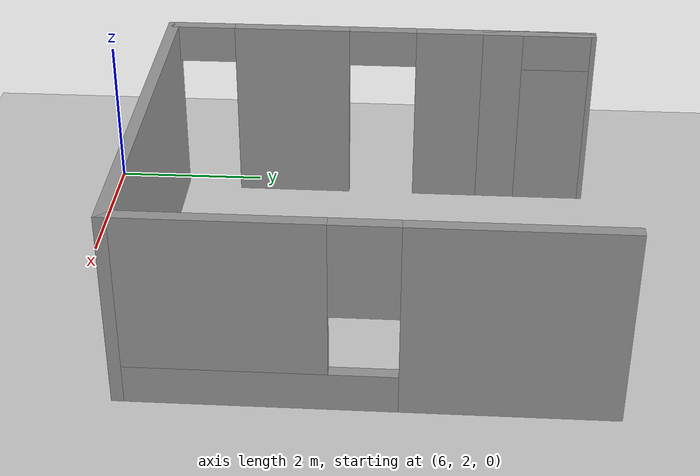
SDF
<sdf version="1.6">
 <world name="default">
  <model name="ground_plane">
   <static>1</static>
   <link name="link">
    <collision name="collision">
     <geometry><plane><normal>0 0 1</normal><size>100 100</size></plane></geometry>
     <surface><friction><ode><mu>100</mu><mu2>50</mu2></ode></friction></surface>
    </collision>
    <visual name="visual">
     <cast_shadows>0</cast_shadows>
     <geometry><plane><normal>0 0 1</normal><size>100 100</size></plane></geometry>
     <material>
      <script><uri>file://media/materials/scripts/gazebo.material</uri><name>Gazebo/Grey</name></script>
     </material>
    </visual>
   </link>
  </model>
  <model name="factory_wall">
   <link name="Wall_30">
    <pose>12.6626 7.37746 0 0 0 -1.5708</pose>
    <visual name="Wall_30_Visual_0">
     <pose>-1.65365 0 1.25 0 -0 0</pose>
     <geometry><box><size>2.5427 0.15 2.5</size></box></geometry>
     <material>
      <script><uri>file://media/materials/scripts/gazebo.material</uri><name>Gazebo/Grey</name></script>
      <ambient>1 1 1 1</ambient>
      <shader type="pixel"/>
     </material>
     <meta><layer>0</layer></meta>
    </visual>
    <visual name="Wall_30_Visual_1">
     <pose>1.27135 0 0.25 0 -0 0</pose>
     <geometry><box><size>3.3073 0.15 0.5</size></box></geometry>
     <material>
      <script><uri>file://media/materials/scripts/gazebo.material</uri><name>Gazebo/Grey</name></script>
      <ambient>1 1 1 1</ambient>
      <shader type="pixel"/>
     </material>
     <meta><layer>0</layer></meta>
    </visual>
    <visual name="Wall_30_Visual_2">
     <pose>1.67135 0 1.5 0 -0 0</pose>
     <geometry><box><size>2.5073 0.15 2</size></box></geometry>
     <material>
      <script><uri>file://media/materials/scripts/gazebo.material</uri><name>Gazebo/Grey</name></script>
      <ambient>1 1 1 1</ambient>
      <shader type="pixel"/>
     </material>
     <meta><layer>0</layer></meta>
    </visual>
    <visual name="Wall_30_Visual_3">
     <pose>0.017697 0 1.9 0 -0 0</pose>
     <geometry><box><size>0.8 0.15 1.2</size></box></geometry>
     <material>
      <script><uri>file://media/materials/scripts/gazebo.material</uri><name>Gazebo/Grey</name></script>
      <ambient>1 1 1 1</ambient>
      <shader type="pixel"/>
     </material>
     <meta><layer>0</layer></meta>
    </visual>
    <collision name="Wall_30_Collision_0">
     <pose>-1.65365 0 1.25 0 -0 0</pose>
     <geometry><box><size>2.5427 0.15 2.5</size></box></geometry>
     <surface>
      <friction>
       <ode><mu>1</mu><mu2>1</mu2><fdir1>0 0 0</fdir1><slip1>0</slip1><slip2>0</slip2></ode>
       <torsional>
        <coefficient>1</coefficient>
        <patch_radius>0</patch_radius>
        <surface_radius>0</surface_radius>
        <use_patch_radius>1</use_patch_radius>
        <ode><slip>0</slip></ode>
       </torsional>
      </friction>
      <bounce><restitution_coefficient>0</restitution_coefficient><threshold>1e+06</threshold></bounce>
      <contact>
       <collide_without_contact>0</collide_without_contact>
       <collide_without_contact_bitmask>1</collide_without_contact_bitmask>
       <collide_bitmask>1</collide_bitmask>
       <ode>
        <soft_cfm>0</soft_cfm>
        <soft_erp>0.2</soft_erp>
        <kp>1e+13</kp>
        <kd>1</kd>
        <max_vel>0.01</max_vel>
        <min_depth>0</min_depth>
       </ode>
       <bullet>
        <split_impulse>1</split_impulse>
        <split_impulse_penetration_threshold>-0.01</split_impulse_penetration_threshold>
        <soft_cfm>0</soft_cfm>
        <soft_erp>0.2</soft_erp>
        <kp>1e+13</kp>
        <kd>1</kd>
       </bullet>
      </contact>
     </surface>
    </collision>
    <collision name="Wall_30_Collision_1">
     <pose>1.27135 0 0.25 0 -0 0</pose>
     <geometry><box><size>3.3073 0.15 0.5</size></box></geometry>
     <surface>
      <friction>
       <ode><mu>1</mu><mu2>1</mu2><fdir1>0 0 0</fdir1><slip1>0</slip1><slip2>0</slip2></ode>
       <torsional>
        <coefficient>1</coefficient>
        <patch_radius>0</patch_radius>
        <surface_radius>0</surface_radius>
        <use_patch_radius>1</use_patch_radius>
        <ode><slip>0</slip></ode>
       </torsional>
      </friction>
      <bounce><restitution_coefficient>0</restitution_coefficient><threshold>1e+06</threshold></bounce>
      <contact>
       <collide_without_contact>0</collide_without_contact>
       <collide_without_contact_bitmask>1</collide_without_contact_bitmask>
       <collide_bitmask>1</collide_bitmask>
       <ode>
        <soft_cfm>0</soft_cfm>
        <soft_erp>0.2</soft_erp>
        <kp>1e+13</kp>
        <kd>1</kd>
        <max_vel>0.01</max_vel>
        <min_depth>0</min_depth>
       </ode>
       <bullet>
        <split_impulse>1</split_impulse>
        <split_impulse_penetration_threshold>-0.01</split_impulse_penetration_threshold>
        <soft_cfm>0</soft_cfm>
        <soft_erp>0.2</soft_erp>
        <kp>1e+13</kp>
        <kd>1</kd>
       </bullet>
      </contact>
     </surface>
    </collision>
    <collision name="Wall_30_Collision_2">
     <pose>1.67135 0 1.5 0 -0 0</pose>
     <geometry><box><size>2.5073 0.15 2</size></box></geometry>
     <surface>
      <friction>
       <ode><mu>1</mu><mu2>1</mu2><fdir1>0 0 0</fdir1><slip1>0</slip1><slip2>0</slip2></ode>
       <torsional>
        <coefficient>1</coefficient>
        <patch_radius>0</patch_radius>
        <surface_radius>0</surface_radius>
        <use_patch_radius>1</use_patch_radius>
        <ode><slip>0</slip></ode>
       </torsional>
      </friction>
      <bounce><restitution_coefficient>0</restitution_coefficient><threshold>1e+06</threshold></bounce>
      <contact>
       <collide_without_contact>0</collide_without_contact>
       <collide_without_contact_bitmask>1</collide_without_contact_bitmask>
       <collide_bitmask>1</collide_bitmask>
       <ode>
        <soft_cfm>0</soft_cfm>
        <soft_erp>0.2</soft_erp>
        <kp>1e+13</kp>
        <kd>1</kd>
        <max_vel>0.01</max_vel>
        <min_depth>0</min_depth>
       </ode>
       <bullet>
        <split_impulse>1</split_impulse>
        <split_impulse_penetration_threshold>-0.01</split_impulse_penetration_threshold>
        <soft_cfm>0</soft_cfm>
        <soft_erp>0.2</soft_erp>
        <kp>1e+13</kp>
        <kd>1</kd>
       </bullet>
      </contact>
     </surface>
    </collision>
    <collision name="Wall_30_Collision_3">
     <pose>0.017697 0 1.9 0 -0 0</pose>
     <geometry><box><size>0.8 0.15 1.2</size></box></geometry>
     <surface>
      <friction>
       <ode><mu>1</mu><mu2>1</mu2><fdir1>0 0 0</fdir1><slip1>0</slip1><slip2>0</slip2></ode>
       <torsional>
        <coefficient>1</coefficient>
        <patch_radius>0</patch_radius>
        <surface_radius>0</surface_radius>
        <use_patch_radius>1</use_patch_radius>
        <ode><slip>0</slip></ode>
       </torsional>
      </friction>
      <bounce><restitution_coefficient>0</restitution_coefficient><threshold>1e+06</threshold></bounce>
      <contact>
       <collide_without_contact>0</collide_without_contact>
       <collide_without_contact_bitmask>1</collide_without_contact_bitmask>
       <collide_bitmask>1</collide_bitmask>
       <ode>
        <soft_cfm>0</soft_cfm>
        <soft_erp>0.2</soft_erp>
        <kp>1e+13</kp>
        <kd>1</kd>
        <max_vel>0.01</max_vel>
        <min_depth>0</min_depth>
       </ode>
       <bullet>
        <split_impulse>1</split_impulse>
        <split_impulse_penetration_threshold>-0.01</split_impulse_penetration_threshold>
        <soft_cfm>0</soft_cfm>
        <soft_erp>0.2</soft_erp>
        <kp>1e+13</kp>
        <kd>1</kd>
       </bullet>
      </contact>
     </surface>
    </collision>
   </link>
   <link name="Wall_32">
    <pose>10.2376 4.52747 0 0 -0 3.14159</pose>
    <visual name="Wall_32_Visual">
     <pose>0 0 1.25 0 -0 0</pose>
     <geometry><box><size>5 0.15 2.5</size></box></geometry>
     <material>
      <script><uri>file://media/materials/scripts/gazebo.material</uri><name>Gazebo/Grey</name></script>
      <ambient>1 1 1 1</ambient>
      <shader type="pixel"/>
     </material>
     <meta><layer>0</layer></meta>
    </visual>
    <collision name="Wall_32_Collision">
     <pose>0 0 1.25 0 -0 0</pose>
     <geometry><box><size>5 0.15 2.5</size></box></geometry>
     <surface>
      <friction>
       <ode><mu>1</mu><mu2>1</mu2><fdir1>0 0 0</fdir1><slip1>0</slip1><slip2>0</slip2></ode>
       <torsional>
        <coefficient>1</coefficient>
        <patch_radius>0</patch_radius>
        <surface_radius>0</surface_radius>
        <use_patch_radius>1</use_patch_radius>
        <ode><slip>0</slip></ode>
       </torsional>
      </friction>
      <bounce><restitution_coefficient>0</restitution_coefficient><threshold>1e+06</threshold></bounce>
      <contact>
       <collide_without_contact>0</collide_without_contact>
       <collide_without_contact_bitmask>1</collide_without_contact_bitmask>
       <collide_bitmask>1</collide_bitmask>
       <ode>
        <soft_cfm>0</soft_cfm>
        <soft_erp>0.2</soft_erp>
        <kp>1e+13</kp>
        <kd>1</kd>
        <max_vel>0.01</max_vel>
        <min_depth>0</min_depth>
       </ode>
       <bullet>
        <split_impulse>1</split_impulse>
        <split_impulse_penetration_threshold>-0.01</split_impulse_penetration_threshold>
        <soft_cfm>0</soft_cfm>
        <soft_erp>0.2</soft_erp>
        <kp>1e+13</kp>
        <kd>1</kd>
       </bullet>
      </contact>
     </surface>
    </collision>
   </link>
   <link name="Wall_33">
    <pose>7.81262 7.32747 0 0 -0 1.5708</pose>
    <visual name="Wall_33_Visual_0">
     <pose>-2.86985 0 1.25 0 -0 0</pose>
     <geometry><box><size>0.010298 0.15 2.5</size></box></geometry>
     <material>
      <script><uri>file://media/materials/scripts/gazebo.material</uri><name>Gazebo/Grey</name></script>
      <ambient>1 1 1 1</ambient>
      <shader type="pixel"/>
     </material>
     <meta><layer>0</layer></meta>
    </visual>
    <visual name="Wall_33_Visual_1">
     <pose>-1.19 0 1.25 0 -0 0</pose>
     <geometry><box><size>1.54941 0.15 2.5</size></box></geometry>
     <material>
      <script><uri>file://media/materials/scripts/gazebo.material</uri><name>Gazebo/Grey</name></script>
      <ambient>1 1 1 1</ambient>
      <shader type="pixel"/>
     </material>
     <meta><layer>0</layer></meta>
    </visual>
    <visual name="Wall_33_Visual_2">
     <pose>1.67985 0 1.25 0 -0 0</pose>
     <geometry><box><size>2.3903 0.15 2.5</size></box></geometry>
     <material>
      <script><uri>file://media/materials/scripts/gazebo.material</uri><name>Gazebo/Grey</name></script>
      <ambient>1 1 1 1</ambient>
      <shader type="pixel"/>
     </material>
     <meta><layer>0</layer></meta>
    </visual>
    <visual name="Wall_33_Visual_3">
     <pose>-2.4147 0 2.25 0 -0 0</pose>
     <geometry><box><size>0.9 0.15 0.5</size></box></geometry>
     <material>
      <script><uri>file://media/materials/scripts/gazebo.material</uri><name>Gazebo/Grey</name></script>
      <ambient>1 1 1 1</ambient>
      <shader type="pixel"/>
     </material>
     <meta><layer>0</layer></meta>
    </visual>
    <visual name="Wall_33_Visual_4">
     <pose>0.034704 0 2.25 0 -0 0</pose>
     <geometry><box><size>0.9 0.15 0.5</size></box></geometry>
     <material>
      <script><uri>file://media/materials/scripts/gazebo.material</uri><name>Gazebo/Grey</name></script>
      <ambient>1 1 1 1</ambient>
      <shader type="pixel"/>
     </material>
     <meta><layer>0</layer></meta>
    </visual>
    <collision name="Wall_33_Collision_0">
     <pose>-2.86985 0 1.25 0 -0 0</pose>
     <geometry><box><size>0.010298 0.15 2.5</size></box></geometry>
     <surface>
      <friction>
       <ode><mu>1</mu><mu2>1</mu2><fdir1>0 0 0</fdir1><slip1>0</slip1><slip2>0</slip2></ode>
       <torsional>
        <coefficient>1</coefficient>
        <patch_radius>0</patch_radius>
        <surface_radius>0</surface_radius>
        <use_patch_radius>1</use_patch_radius>
        <ode><slip>0</slip></ode>
       </torsional>
      </friction>
      <bounce><restitution_coefficient>0</restitution_coefficient><threshold>1e+06</threshold></bounce>
      <contact>
       <collide_without_contact>0</collide_without_contact>
       <collide_without_contact_bitmask>1</collide_without_contact_bitmask>
       <collide_bitmask>1</collide_bitmask>
       <ode>
        <soft_cfm>0</soft_cfm>
        <soft_erp>0.2</soft_erp>
        <kp>1e+13</kp>
        <kd>1</kd>
        <max_vel>0.01</max_vel>
        <min_depth>0</min_depth>
       </ode>
       <bullet>
        <split_impulse>1</split_impulse>
        <split_impulse_penetration_threshold>-0.01</split_impulse_penetration_threshold>
        <soft_cfm>0</soft_cfm>
        <soft_erp>0.2</soft_erp>
        <kp>1e+13</kp>
        <kd>1</kd>
       </bullet>
      </contact>
     </surface>
    </collision>
    <collision name="Wall_33_Collision_1">
     <pose>-1.19 0 1.25 0 -0 0</pose>
     <geometry><box><size>1.54941 0.15 2.5</size></box></geometry>
     <surface>
      <friction>
       <ode><mu>1</mu><mu2>1</mu2><fdir1>0 0 0</fdir1><slip1>0</slip1><slip2>0</slip2></ode>
       <torsional>
        <coefficient>1</coefficient>
        <patch_radius>0</patch_radius>
        <surface_radius>0</surface_radius>
        <use_patch_radius>1</use_patch_radius>
        <ode><slip>0</slip></ode>
       </torsional>
      </friction>
      <bounce><restitution_coefficient>0</restitution_coefficient><threshold>1e+06</threshold></bounce>
      <contact>
       <collide_without_contact>0</collide_without_contact>
       <collide_without_contact_bitmask>1</collide_without_contact_bitmask>
       <collide_bitmask>1</collide_bitmask>
       <ode>
        <soft_cfm>0</soft_cfm>
        <soft_erp>0.2</soft_erp>
        <kp>1e+13</kp>
        <kd>1</kd>
        <max_vel>0.01</max_vel>
        <min_depth>0</min_depth>
       </ode>
       <bullet>
        <split_impulse>1</split_impulse>
        <split_impulse_penetration_threshold>-0.01</split_impulse_penetration_threshold>
        <soft_cfm>0</soft_cfm>
        <soft_erp>0.2</soft_erp>
        <kp>1e+13</kp>
        <kd>1</kd>
       </bullet>
      </contact>
     </surface>
    </collision>
    <collision name="Wall_33_Collision_2">
     <pose>1.67985 0 1.25 0 -0 0</pose>
     <geometry><box><size>2.3903 0.15 2.5</size></box></geometry>
     <surface>
      <friction>
       <ode><mu>1</mu><mu2>1</mu2><fdir1>0 0 0</fdir1><slip1>0</slip1><slip2>0</slip2></ode>
       <torsional>
        <coefficient>1</coefficient>
        <patch_radius>0</patch_radius>
        <surface_radius>0</surface_radius>
        <use_patch_radius>1</use_patch_radius>
        <ode><slip>0</slip></ode>
       </torsional>
      </friction>
      <bounce><restitution_coefficient>0</restitution_coefficient><threshold>1e+06</threshold></bounce>
      <contact>
       <collide_without_contact>0</collide_without_contact>
       <collide_without_contact_bitmask>1</collide_without_contact_bitmask>
       <collide_bitmask>1</collide_bitmask>
       <ode>
        <soft_cfm>0</soft_cfm>
        <soft_erp>0.2</soft_erp>
        <kp>1e+13</kp>
        <kd>1</kd>
        <max_vel>0.01</max_vel>
        <min_depth>0</min_depth>
       </ode>
       <bullet>
        <split_impulse>1</split_impulse>
        <split_impulse_penetration_threshold>-0.01</split_impulse_penetration_threshold>
        <soft_cfm>0</soft_cfm>
        <soft_erp>0.2</soft_erp>
        <kp>1e+13</kp>
        <kd>1</kd>
       </bullet>
      </contact>
     </surface>
    </collision>
    <collision name="Wall_33_Collision_3">
     <pose>-2.4147 0 2.25 0 -0 0</pose>
     <geometry><box><size>0.9 0.15 0.5</size></box></geometry>
     <surface>
      <friction>
       <ode><mu>1</mu><mu2>1</mu2><fdir1>0 0 0</fdir1><slip1>0</slip1><slip2>0</slip2></ode>
       <torsional>
        <coefficient>1</coefficient>
        <patch_radius>0</patch_radius>
        <surface_radius>0</surface_radius>
        <use_patch_radius>1</use_patch_radius>
        <ode><slip>0</slip></ode>
       </torsional>
      </friction>
      <bounce><restitution_coefficient>0</restitution_coefficient><threshold>1e+06</threshold></bounce>
      <contact>
       <collide_without_contact>0</collide_without_contact>
       <collide_without_contact_bitmask>1</collide_without_contact_bitmask>
       <collide_bitmask>1</collide_bitmask>
       <ode>
        <soft_cfm>0</soft_cfm>
        <soft_erp>0.2</soft_erp>
        <kp>1e+13</kp>
        <kd>1</kd>
        <max_vel>0.01</max_vel>
        <min_depth>0</min_depth>
       </ode>
       <bullet>
        <split_impulse>1</split_impulse>
        <split_impulse_penetration_threshold>-0.01</split_impulse_penetration_threshold>
        <soft_cfm>0</soft_cfm>
        <soft_erp>0.2</soft_erp>
        <kp>1e+13</kp>
        <kd>1</kd>
       </bullet>
      </contact>
     </surface>
    </collision>
    <collision name="Wall_33_Collision_4">
     <pose>0.034704 0 2.25 0 -0 0</pose>
     <geometry><box><size>0.9 0.15 0.5</size></box></geometry>
     <surface>
      <friction>
       <ode><mu>1</mu><mu2>1</mu2><fdir1>0 0 0</fdir1><slip1>0</slip1><slip2>0</slip2></ode>
       <torsional>
        <coefficient>1</coefficient>
        <patch_radius>0</patch_radius>
        <surface_radius>0</surface_radius>
        <use_patch_radius>1</use_patch_radius>
        <ode><slip>0</slip></ode>
       </torsional>
      </friction>
      <bounce><restitution_coefficient>0</restitution_coefficient><threshold>1e+06</threshold></bounce>
      <contact>
       <collide_without_contact>0</collide_without_contact>
       <collide_without_contact_bitmask>1</collide_without_contact_bitmask>
       <collide_bitmask>1</collide_bitmask>
       <ode>
        <soft_cfm>0</soft_cfm>
        <soft_erp>0.2</soft_erp>
        <kp>1e+13</kp>
        <kd>1</kd>
        <max_vel>0.01</max_vel>
        <min_depth>0</min_depth>
       </ode>
       <bullet>
        <split_impulse>1</split_impulse>
        <split_impulse_penetration_threshold>-0.01</split_impulse_penetration_threshold>
        <soft_cfm>0</soft_cfm>
        <soft_erp>0.2</soft_erp>
        <kp>1e+13</kp>
        <kd>1</kd>
       </bullet>
      </contact>
     </surface>
    </collision>
   </link>
   <link name="Wall_43">
    <pose>7.81262 9.45247 0 0 0 -1.5708</pose>
    <visual name="Wall_43_Visual_0">
     <pose>-0.716597 0 1.25 0 -0 0</pose>
     <geometry><box><size>0.066805 0.15 2.5</size></box></geometry>
     <material>
      <script><uri>file://media/materials/scripts/gazebo.material</uri><name>Gazebo/Grey</name></script>
      <ambient>1 1 1 1</ambient>
      <shader type="pixel"/>
     </material>
     <meta><layer>0</layer></meta>
    </visual>
    <visual name="Wall_43_Visual_1">
     <pose>0.483403 0 1.25 0 -0 0</pose>
     <geometry><box><size>0.533195 0.15 2.5</size></box></geometry>
     <material>
      <script><uri>file://media/materials/scripts/gazebo.material</uri><name>Gazebo/Grey</name></script>
      <ambient>1 1 1 1</ambient>
      <shader type="pixel"/>
     </material>
     <meta><layer>0</layer></meta>
    </visual>
    <visual name="Wall_43_Visual_2">
     <pose>-0.233195 0 2.25 0 -0 0</pose>
     <geometry><box><size>0.9 0.15 0.5</size></box></geometry>
     <material>
      <script><uri>file://media/materials/scripts/gazebo.material</uri><name>Gazebo/Grey</name></script>
      <ambient>1 1 1 1</ambient>
      <shader type="pixel"/>
     </material>
     <meta><layer>0</layer></meta>
    </visual>
    <collision name="Wall_43_Collision_0">
     <pose>-0.716597 0 1.25 0 -0 0</pose>
     <geometry><box><size>0.066805 0.15 2.5</size></box></geometry>
     <surface>
      <friction>
       <ode><mu>1</mu><mu2>1</mu2><fdir1>0 0 0</fdir1><slip1>0</slip1><slip2>0</slip2></ode>
       <torsional>
        <coefficient>1</coefficient>
        <patch_radius>0</patch_radius>
        <surface_radius>0</surface_radius>
        <use_patch_radius>1</use_patch_radius>
        <ode><slip>0</slip></ode>
       </torsional>
      </friction>
      <bounce><restitution_coefficient>0</restitution_coefficient><threshold>1e+06</threshold></bounce>
      <contact>
       <collide_without_contact>0</collide_without_contact>
       <collide_without_contact_bitmask>1</collide_without_contact_bitmask>
       <collide_bitmask>1</collide_bitmask>
       <ode>
        <soft_cfm>0</soft_cfm>
        <soft_erp>0.2</soft_erp>
        <kp>1e+13</kp>
        <kd>1</kd>
        <max_vel>0.01</max_vel>
        <min_depth>0</min_depth>
       </ode>
       <bullet>
        <split_impulse>1</split_impulse>
        <split_impulse_penetration_threshold>-0.01</split_impulse_penetration_threshold>
        <soft_cfm>0</soft_cfm>
        <soft_erp>0.2</soft_erp>
        <kp>1e+13</kp>
        <kd>1</kd>
       </bullet>
      </contact>
     </surface>
    </collision>
    <collision name="Wall_43_Collision_1">
     <pose>0.483403 0 1.25 0 -0 0</pose>
     <geometry><box><size>0.533195 0.15 2.5</size></box></geometry>
     <surface>
      <friction>
       <ode><mu>1</mu><mu2>1</mu2><fdir1>0 0 0</fdir1><slip1>0</slip1><slip2>0</slip2></ode>
       <torsional>
        <coefficient>1</coefficient>
        <patch_radius>0</patch_radius>
        <surface_radius>0</surface_radius>
        <use_patch_radius>1</use_patch_radius>
        <ode><slip>0</slip></ode>
       </torsional>
      </friction>
      <bounce><restitution_coefficient>0</restitution_coefficient><threshold>1e+06</threshold></bounce>
      <contact>
       <collide_without_contact>0</collide_without_contact>
       <collide_without_contact_bitmask>1</collide_without_contact_bitmask>
       <collide_bitmask>1</collide_bitmask>
       <ode>
        <soft_cfm>0</soft_cfm>
        <soft_erp>0.2</soft_erp>
        <kp>1e+13</kp>
        <kd>1</kd>
        <max_vel>0.01</max_vel>
        <min_depth>0</min_depth>
       </ode>
       <bullet>
        <split_impulse>1</split_impulse>
        <split_impulse_penetration_threshold>-0.01</split_impulse_penetration_threshold>
        <soft_cfm>0</soft_cfm>
        <soft_erp>0.2</soft_erp>
        <kp>1e+13</kp>
        <kd>1</kd>
       </bullet>
      </contact>
     </surface>
    </collision>
    <collision name="Wall_43_Collision_2">
     <pose>-0.233195 0 2.25 0 -0 0</pose>
     <geometry><box><size>0.9 0.15 0.5</size></box></geometry>
     <surface>
      <friction>
       <ode><mu>1</mu><mu2>1</mu2><fdir1>0 0 0</fdir1><slip1>0</slip1><slip2>0</slip2></ode>
       <torsional>
        <coefficient>1</coefficient>
        <patch_radius>0</patch_radius>
        <surface_radius>0</surface_radius>
        <use_patch_radius>1</use_patch_radius>
        <ode><slip>0</slip></ode>
       </torsional>
      </friction>
      <bounce><restitution_coefficient>0</restitution_coefficient><threshold>1e+06</threshold></bounce>
      <contact>
       <collide_without_contact>0</collide_without_contact>
       <collide_without_contact_bitmask>1</collide_without_contact_bitmask>
       <collide_bitmask>1</collide_bitmask>
       <ode>
        <soft_cfm>0</soft_cfm>
        <soft_erp>0.2</soft_erp>
        <kp>1e+13</kp>
        <kd>1</kd>
        <max_vel>0.01</max_vel>
        <min_depth>0</min_depth>
       </ode>
       <bullet>
        <split_impulse>1</split_impulse>
        <split_impulse_penetration_threshold>-0.01</split_impulse_penetration_threshold>
        <soft_cfm>0</soft_cfm>
        <soft_erp>0.2</soft_erp>
        <kp>1e+13</kp>
        <kd>1</kd>
       </bullet>
      </contact>
     </surface>
    </collision>
   </link>
   <static>1</static>
   <pose>-1.6008 -1.60462 0 0 -0 0</pose>
  </model>
  <model name="wooden_case">
   <link name="base">
    <pose>0 0 0.024 0 -0 0</pose>
    <inertial>
     <pose>-0.022184 0 0.171592 0 -0 0</pose>
     <mass>3.96264</mass>
     <inertia>
      <ixx>0.213536</ixx>
      <ixy>0</ixy>
      <ixz>0.000779377</ixz>
      <iyy>0.0708943</iyy>
      <iyz>0</iyz>
      <izz>0.154604</izz>
     </inertia>
    </inertial>
    <collision name="collision_back">
     <pose>-0.053975 0 0.1778 0 -0 0</pose>
     <geometry><box><size>0.01905 0.5461 0.3175</size></box></geometry>
     <surface>
      <contact>
       <poissons_ratio>0.347</poissons_ratio>
       <elastic_modulus>8.8e+09</elastic_modulus>
       <ode><kp>100000</kp><kd>100</kd><max_vel>100</max_vel><min_depth>0.001</min_depth></ode>
      </contact>
      <friction>
       <torsional>
        <coefficient>1</coefficient>
        <use_patch_radius>0</use_patch_radius>
        <surface_radius>0.01</surface_radius>
       </torsional>
      </friction>
     </surface>
    </collision>
    <visual name="visual_back">
     <pose>-0.053975 0 0.1778 0 -0 0</pose>
     <geometry><box><size>0.01905 0.5461 0.3175</size></box></geometry>
     <material>
      <script><uri>file://media/materials/scripts/gazebo.material</uri><name>Gazebo/Wood</name></script>
     </material>
    </visual>
    <collision name="collision_bottom">
     <pose>0 0 0.009525 0 -0 0</pose>
     <geometry><box><size>0.127 0.5842 0.01905</size></box></geometry>
     <surface>
      <contact>
       <poissons_ratio>0.347</poissons_ratio>
       <elastic_modulus>8.8e+09</elastic_modulus>
       <ode><kp>100000</kp><kd>100</kd><max_vel>100</max_vel><min_depth>0.001</min_depth></ode>
      </contact>
      <friction>
       <torsional>
        <coefficient>1</coefficient>
        <use_patch_radius>0</use_patch_radius>
        <surface_radius>0.01</surface_radius>
       </torsional>
      </friction>
     </surface>
    </collision>
    <visual name="visual_bottom">
     <pose>0 0 0.009525 0 -0 0</pose>
     <geometry><box><size>0.127 0.5842 0.01905</size></box></geometry>
     <material>
      <script><uri>file://media/materials/scripts/gazebo.material</uri><name>Gazebo/Wood</name></script>
     </material>
    </visual>
    <collision name="collision_top">
     <pose>0 0 0.346075 0 -0 0</pose>
     <geometry><box><size>0.127 0.5842 0.01905</size></box></geometry>
     <surface>
      <contact>
       <poissons_ratio>0.347</poissons_ratio>
       <elastic_modulus>8.8e+09</elastic_modulus>
       <ode><kp>100000</kp><kd>100</kd><max_vel>100</max_vel><min_depth>0.001</min_depth></ode>
      </contact>
      <friction>
       <torsional>
        <coefficient>1</coefficient>
        <use_patch_radius>0</use_patch_radius>
        <surface_radius>0.01</surface_radius>
       </torsional>
      </friction>
     </surface>
    </collision>
    <visual name="visual_top">
     <pose>0 0 0.346075 0 -0 0</pose>
     <geometry><box><size>0.127 0.5842 0.01905</size></box></geometry>
     <material>
      <script><uri>file://media/materials/scripts/gazebo.material</uri><name>Gazebo/Wood</name></script>
     </material>
    </visual>
    <collision name="collision_left">
     <pose>0 -0.282575 0.1778 0 -0 0</pose>
     <geometry><box><size>0.127 0.01905 0.3175</size></box></geometry>
     <surface>
      <contact>
       <poissons_ratio>0.347</poissons_ratio>
       <elastic_modulus>8.8e+09</elastic_modulus>
       <ode><kp>100000</kp><kd>100</kd><max_vel>100</max_vel><min_depth>0.001</min_depth></ode>
      </contact>
      <friction>
       <torsional>
        <coefficient>1</coefficient>
        <use_patch_radius>0</use_patch_radius>
        <surface_radius>0.01</surface_radius>
       </torsional>
      </friction>
     </surface>
    </collision>
    <visual name="visual_left">
     <pose>0 -0.282575 0.1778 0 -0 0</pose>
     <geometry><box><size>0.127 0.01905 0.3175</size></box></geometry>
     <material>
      <script><uri>file://media/materials/scripts/gazebo.material</uri><name>Gazebo/Wood</name></script>
     </material>
    </visual>
    <collision name="collision_right">
     <pose>0 0.282575 0.1778 0 -0 0</pose>
     <geometry><box><size>0.127 0.01905 0.3175</size></box></geometry>
     <surface>
      <contact>
       <poissons_ratio>0.347</poissons_ratio>
       <elastic_modulus>8.8e+09</elastic_modulus>
       <ode><kp>100000</kp><kd>100</kd><max_vel>100</max_vel><min_depth>0.001</min_depth></ode>
      </contact>
      <friction>
       <torsional>
        <coefficient>1</coefficient>
        <use_patch_radius>0</use_patch_radius>
        <surface_radius>0.01</surface_radius>
       </torsional>
      </friction>
     </surface>
    </collision>
    <visual name="visual_right">
     <pose>0 0.282575 0.1778 0 -0 0</pose>
     <geometry><box><size>0.127 0.01905 0.3175</size></box></geometry>
     <material>
      <script><uri>file://media/materials/scripts/gazebo.material</uri><name>Gazebo/Wood</name></script>
     </material>
    </visual>
    <collision name="collision_block_left">
     <pose>0.0095 -0.2151 -0.012 0 -0 0</pose>
     <geometry><box><size>0.108 0.05 0.024</size></box></geometry>
     <surface>
      <contact>
       <poissons_ratio>0.347</poissons_ratio>
       <elastic_modulus>8.8e+09</elastic_modulus>
       <ode><kp>100000</kp><kd>100</kd><max_vel>100</max_vel><min_depth>0.001</min_depth></ode>
      </contact>
      <friction>
       <torsional>
        <coefficient>1</coefficient>
        <use_patch_radius>0</use_patch_radius>
        <surface_radius>0.01</surface_radius>
       </torsional>
      </friction>
     </surface>
    </collision>
    <visual name="visual_block_left">
     <pose>0.0095 -0.2151 -0.012 0 -0 0</pose>
     <geometry><box><size>0.108 0.05 0.024</size></box></geometry>
     <material>
      <script><uri>file://media/materials/scripts/gazebo.material</uri><name>Gazebo/Wood</name></script>
     </material>
    </visual>
    <collision name="collision_block_right">
     <pose>0.0095 0.2151 -0.012 0 -0 0</pose>
     <geometry><box><size>0.108 0.05 0.024</size></box></geometry>
     <surface>
      <contact>
       <poissons_ratio>0.347</poissons_ratio>
       <elastic_modulus>8.8e+09</elastic_modulus>
       <ode><kp>100000</kp><kd>100</kd><max_vel>100</max_vel><min_depth>0.001</min_depth></ode>
      </contact>
      <friction>
       <torsional>
        <coefficient>1</coefficient>
        <use_patch_radius>0</use_patch_radius>
        <surface_radius>0.01</surface_radius>
       </torsional>
      </friction>
     </surface>
    </collision>
    <visual name="visual_block_right">
     <pose>0.0095 0.2151 -0.012 0 -0 0</pose>
     <geometry><box><size>0.108 0.05 0.024</size></box></geometry>
     <material>
      <script><uri>file://media/materials/scripts/gazebo.material</uri><name>Gazebo/Wood</name></script>
     </material>
    </visual>
   </link>
   <link name="lid">
    <pose>0.243775 0 0.009525 0 -0 0</pose>
    <inertial>
     <mass>1.97874</mass>
     <inertia>
      <ixx>0.0563367</ixx>
      <ixy>0</ixy>
      <ixz>0</ixz>
      <iyy>0.020911</iyy>
      <iyz>0</iyz>
      <izz>0.0771281</izz>
     </inertia>
    </inertial>
    <collision name="collision">
     <geometry><box><size>0.3556 0.5842 0.01905</size></box></geometry>
     <surface>
      <contact>
       <poissons_ratio>0.347</poissons_ratio>
       <elastic_modulus>8.8e+09</elastic_modulus>
       <ode><kp>100000</kp><kd>100</kd><max_vel>100</max_vel><min_depth>0.001</min_depth></ode>
      </contact>
      <friction>
       <torsional>
        <coefficient>1</coefficient>
        <use_patch_radius>0</use_patch_radius>
        <surface_radius>0.01</surface_radius>
       </torsional>
      </friction>
     </surface>
    </collision>
    <visual name="visual">
     <geometry><box><size>0.3556 0.5842 0.01905</size></box></geometry>
     <material>
      <script><uri>file://media/materials/scripts/gazebo.material</uri><name>Gazebo/Wood</name></script>
     </material>
    </visual>
    <visual name="tee_nut_1">
     <pose>0.122 -0.216 0 0 -0 0</pose>
     <geometry><cylinder><radius>0.00635</radius><length>0.0192405</length></cylinder></geometry>
     <material>
      <script><uri>file://media/materials/scripts/gazebo.material</uri><name>Gazebo/Grey</name></script>
     </material>
    </visual>
    <visual name="tee_nut_2">
     <pose>0.122 -0.088 0 0 -0 0</pose>
     <geometry><cylinder><radius>0.00635</radius><length>0.0192405</length></cylinder></geometry>
     <material>
      <script><uri>file://media/materials/scripts/gazebo.material</uri><name>Gazebo/Grey</name></script>
     </material>
    </visual>
    <visual name="tee_nut_3">
     <pose>0.122 0.088 0 0 -0 0</pose>
     <geometry><cylinder><radius>0.00635</radius><length>0.0192405</length></cylinder></geometry>
     <material>
      <script><uri>file://media/materials/scripts/gazebo.material</uri><name>Gazebo/Grey</name></script>
     </material>
    </visual>
    <visual name="tee_nut_4">
     <pose>0.122 0.216 0 0 -0 0</pose>
     <geometry><cylinder><radius>0.00635</radius><length>0.0192405</length></cylinder></geometry>
     <material>
      <script><uri>file://media/materials/scripts/gazebo.material</uri><name>Gazebo/Grey</name></script>
     </material>
    </visual>
   </link>
   <joint name="lid_hinge" type="revolute">
    <pose>-0.1778 0 0.01905 0 -0 0</pose>
    <parent>base</parent>
    <child>lid</child>
    <axis>
     <xyz>0 1 0</xyz>
     <limit><upper>0.523599</upper><lower>-1.5708</lower></limit>
     <use_parent_model_frame>0</use_parent_model_frame>
     <dynamics><spring_reference>0</spring_reference><spring_stiffness>0</spring_stiffness></dynamics>
    </axis>
   </joint>
   <pose>8.54217 2.78017 0 0 0 -1.60238</pose>
  </model>
 </world>
</sdf>
